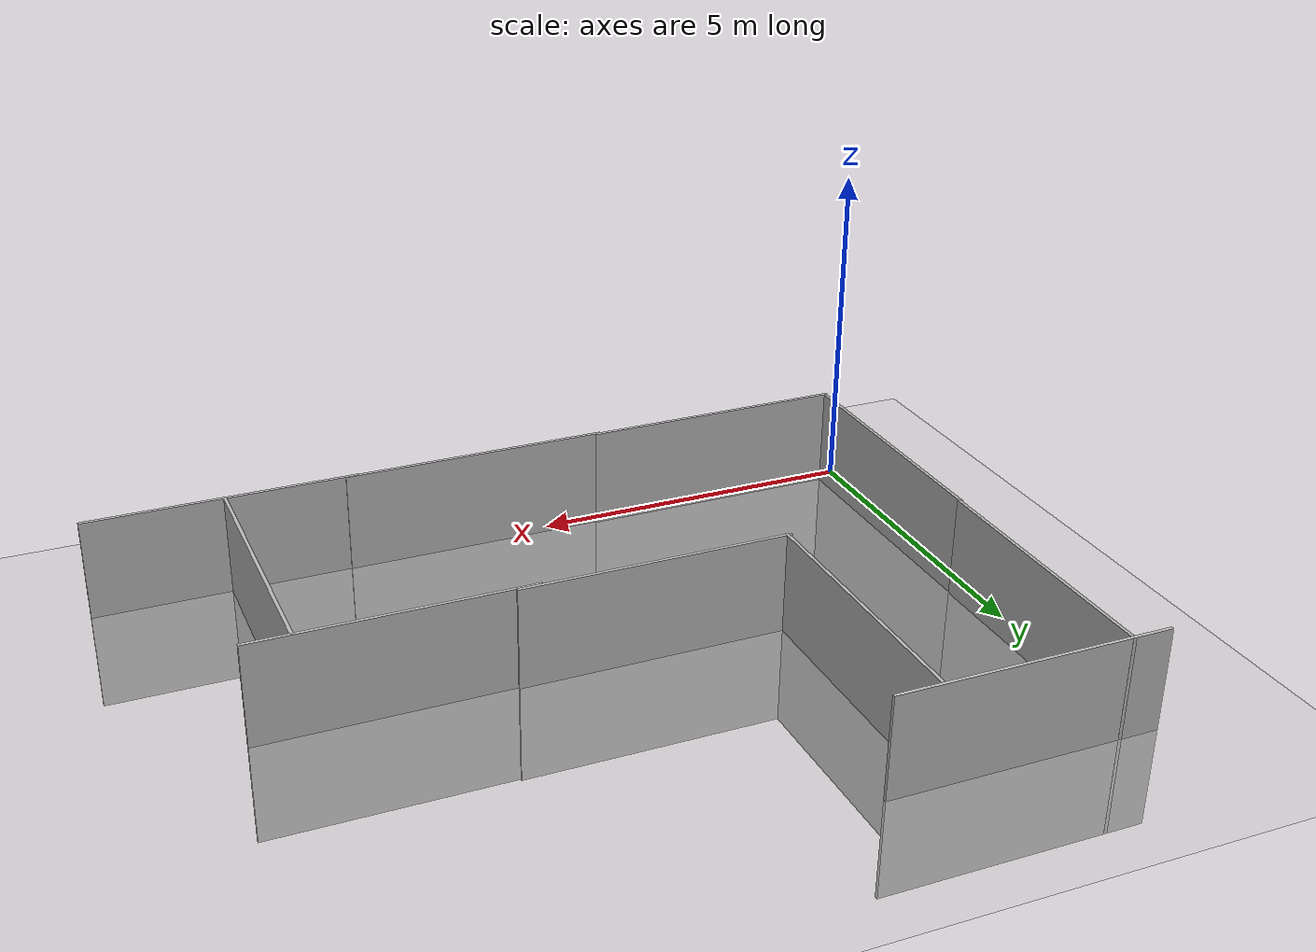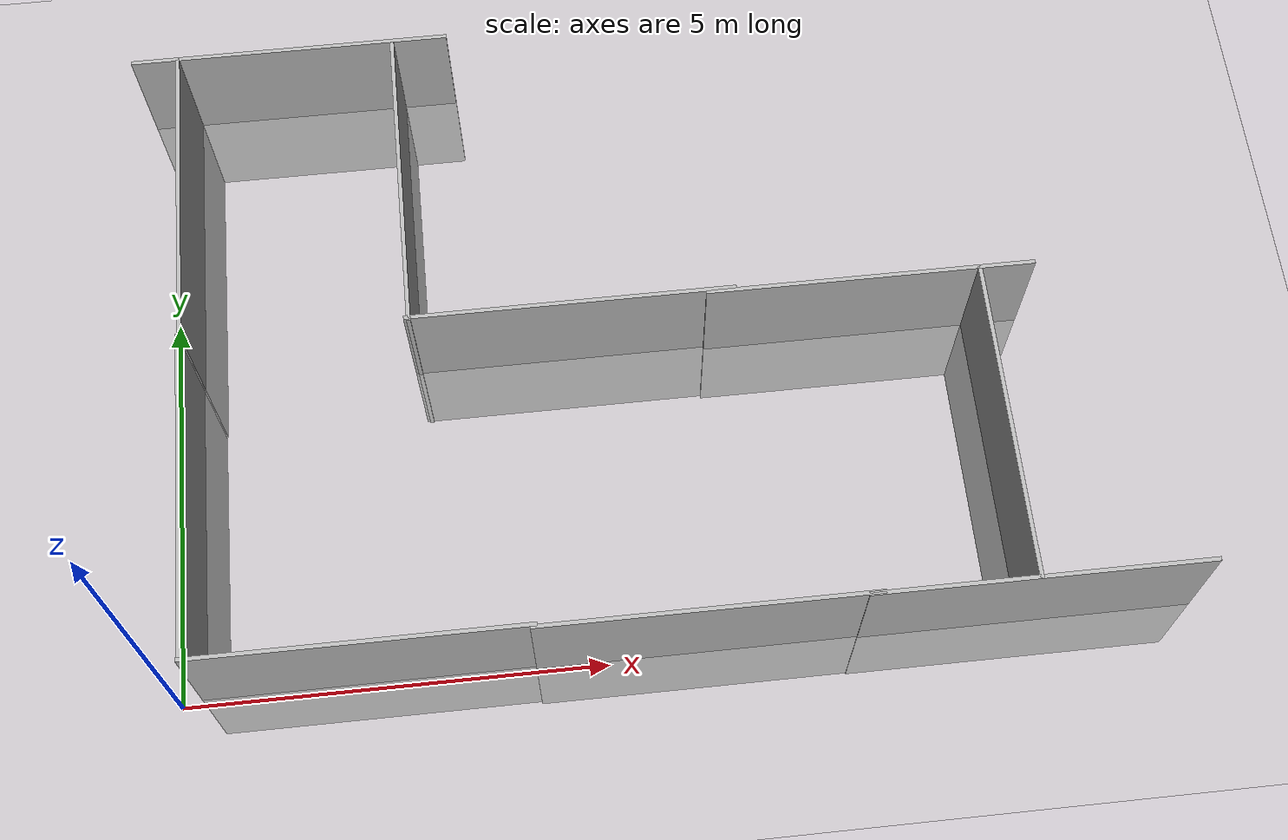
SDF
<sdf version="1.6">
 <world name="default">
  <light name="sun" type="directional">
   <pose>0 0 10 0 -0 0</pose>
   <diffuse>0.8 0.8 0.8 1</diffuse>
   <specular>0.2 0.2 0.2 1</specular>
   <attenuation>
    <range>1000</range>
    <constant>0.9</constant>
    <linear>0.01</linear>
    <quadratic>0.001</quadratic>
   </attenuation>
   <direction>-0.5 0.1 -0.9</direction>
  </light>
  <model name="ground_plane">
   <static>1</static>
   <link name="link">
    <collision name="collision">
     <geometry><plane><normal>0 0 1</normal><size>100 100</size></plane></geometry>
     <surface><friction><ode><mu>100</mu><mu2>50</mu2></ode></friction></surface>
    </collision>
    <visual name="visual">
     <cast_shadows>0</cast_shadows>
     <geometry><plane><normal>0 0 1</normal><size>100 100</size></plane></geometry>
     <material>
      <script><uri>file://media/materials/scripts/gazebo.material</uri><name>Gazebo/Grey</name></script>
     </material>
    </visual>
   </link>
  </model>
  <gravity>0 0 -9.8</gravity>
  <magnetic_field>6e-06 2.3e-05 -4.2e-05</magnetic_field>
  <atmosphere type="adiabatic"/>
  <physics name="default_physics" default="0" type="ode">
   <max_step_size>0.001</max_step_size>
   <real_time_factor>1</real_time_factor>
   <real_time_update_rate>1000</real_time_update_rate>
  </physics>
  <scene><ambient>0.4 0.4 0.4 1</ambient><background>0.7 0.7 0.7 1</background><shadows>1</shadows></scene>
  <spherical_coordinates>
   <surface_model>EARTH_WGS84</surface_model>
   <latitude_deg>0</latitude_deg>
   <longitude_deg>0</longitude_deg>
   <elevation>0</elevation>
   <heading_deg>0</heading_deg>
  </spherical_coordinates>
  <model name="wall4">
   <static>1</static>
   <link name="wall1">
    <pose>0 0 0 0 -0 1.57</pose>
    <collision name="collision"><geometry><box><size>4 0.05 3</size></box></geometry></collision>
    <visual name="visual"><geometry><box><size>4 0.05 3</size></box></geometry></visual>
   </link>
   <pose>0.260841 2.13221 0 0 -0 0</pose>
  </model>
  <model name="wall4_0">
   <static>1</static>
   <link name="wall1">
    <pose>0 0 0 0 -0 1.57</pose>
    <collision name="collision"><geometry><box><size>4 0.05 3</size></box></geometry></collision>
    <visual name="visual"><geometry><box><size>4 0.05 3</size></box></geometry></visual>
   </link>
   <pose>0.28201 6.07908 0 0 -0 0</pose>
  </model>
  <model name="wall4_1">
   <static>1</static>
   <link name="wall1">
    <collision name="collision"><geometry><box><size>4 0.05 3</size></box></geometry></collision>
    <visual name="visual"><geometry><box><size>4 0.05 3</size></box></geometry></visual>
   </link>
   <pose>2.22146 0.10541 0 0 -0 0</pose>
  </model>
  <model name="wall4_2">
   <static>1</static>
   <link name="wall1">
    <pose>0 0 0 0 -0 1.57</pose>
    <collision name="collision"><geometry><box><size>4 0.05 3</size></box></geometry></collision>
    <visual name="visual"><geometry><box><size>4 0.05 3</size></box></geometry></visual>
   </link>
   <pose>3.00246 6.02708 0 0 -0 0</pose>
  </model>
  <model name="wall4_3">
   <static>1</static>
   <link name="wall1">
    <collision name="collision"><geometry><box><size>4 0.05 3</size></box></geometry></collision>
    <visual name="visual"><geometry><box><size>4 0.05 3</size></box></geometry></visual>
   </link>
   <pose>1.70037 8.053 0 0 -0 0</pose>
  </model>
  <model name="wall4_4">
   <static>1</static>
   <link name="wall1">
    <pose>0 0 0 0 -0 1.57</pose>
    <collision name="collision"><geometry><box><size>4 0.05 3</size></box></geometry></collision>
    <visual name="visual"><geometry><box><size>4 0.05 3</size></box></geometry></visual>
   </link>
   <pose>9.89838 2.04238 0 0 -0 0</pose>
  </model>
  <model name="wall4_5">
   <static>1</static>
   <link name="wall1">
    <collision name="collision"><geometry><box><size>4 0.05 3</size></box></geometry></collision>
    <visual name="visual"><geometry><box><size>4 0.05 3</size></box></geometry></visual>
   </link>
   <pose>4.94303 4.06949 0 0 -0 0</pose>
  </model>
  <model name="wall4_6">
   <static>1</static>
   <link name="wall1">
    <collision name="collision"><geometry><box><size>4 0.05 3</size></box></geometry></collision>
    <visual name="visual"><geometry><box><size>4 0.05 3</size></box></geometry></visual>
   </link>
   <pose>8.57718 4.03645 0 0 -0 0</pose>
  </model>
  <model name="wall4_7">
   <static>1</static>
   <link name="wall1">
    <collision name="collision"><geometry><box><size>4 0.05 3</size></box></geometry></collision>
    <visual name="visual"><geometry><box><size>4 0.05 3</size></box></geometry></visual>
   </link>
   <pose>6.13715 0.078493 0 0 -0 0</pose>
  </model>
  <model name="wall4_8">
   <static>1</static>
   <link name="wall1">
    <collision name="collision"><geometry><box><size>4 0.05 3</size></box></geometry></collision>
    <visual name="visual"><geometry><box><size>4 0.05 3</size></box></geometry></visual>
   </link>
   <pose>9.94462 0.065706 0 0 -0 0</pose>
  </model>
 </world>
</sdf>
